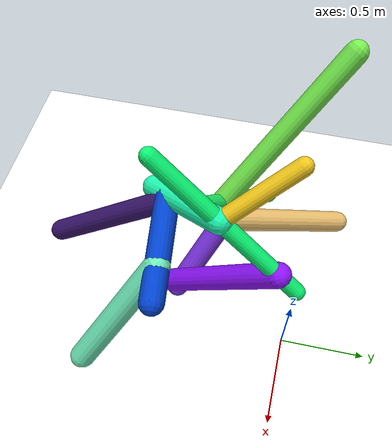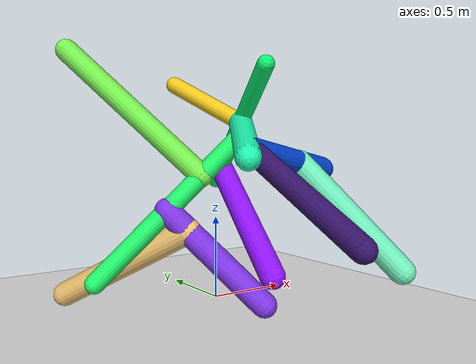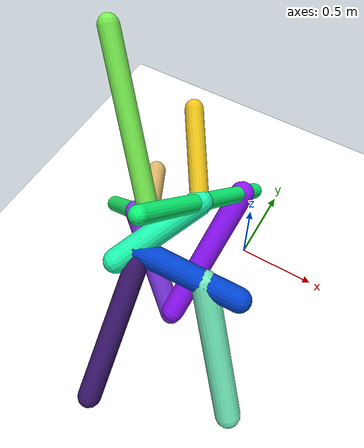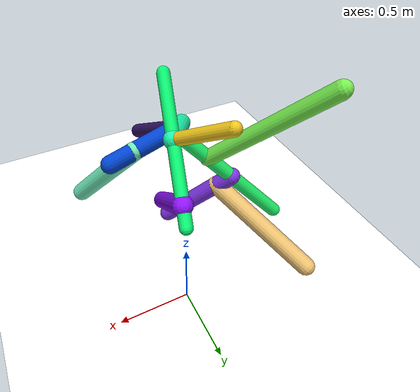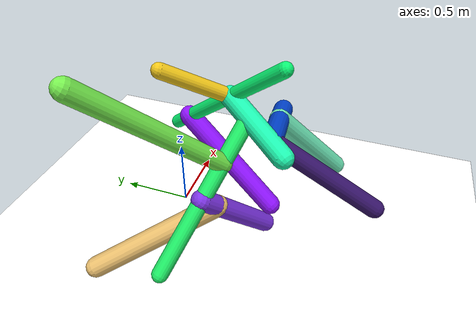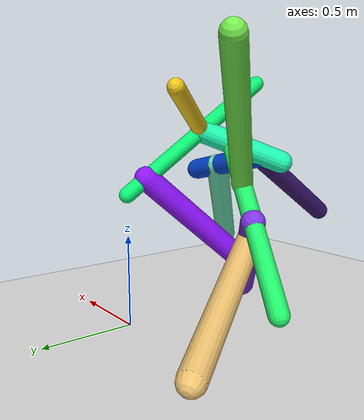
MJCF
<mujoco model="morphology">
  <option timestep="0.01"/>
  <default>
    <default class="/"/>
    <default class="0/"/>
    <default class="0/1/"/>
    <default class="0/2/"/>
    <default class="0/2/3/"/>
    <default class="0/2/3/4/"/>
    <default class="0/2/3/5/"/>
    <default class="0/2/6/"/>
    <default class="0/2/6/7/"/>
    <default class="0/2/6/7/8/"/>
    <default class="0/2/6/9/"/>
    <default class="0/2/10/"/>
  </default>
  <asset>
    <texture name="texplane" type="2d" builtin="checker" rgb1="0.10000000000000001 0.20000000000000001 0.29999999999999999" rgb2="0.20000000000000001 0.29999999999999999 0.40000000000000002" width="300" height="300"/>
    <material name="MatPlane" class="/" texture="texplane" texrepeat="20 20" specular="1" shininess="1" reflectance="0.5"/>
  </asset>
  <worldbody>
    <light name="//unnamed_light_0" class="/" directional="true" pos="0 0 1.5" dir="0 0 -1.3" cutoff="100" exponent="1" diffuse="1 1 1" specular="0.10000000000000001 0.10000000000000001 0.10000000000000001"/>
    <geom name="ground" class="/" type="plane" size="15 15 0.5" material="MatPlane" rgba="1 1 1 1"/>
    <site name="body" class="/" size="9.9999999999999995e-07 9.9999999999999995e-07 9.9999999999999995e-07" pos="0 0 0.72592643499374387"/>
    <body pos="0 0 0.72592643499374387" name="0/">
      <freejoint name="0/"/>
      <geom name="0/geom" class="0/" type="capsule" contype="1" conaffinity="1" condim="3" size="0.044187440050253636" rgba="0.03211432888996324 0.94908601437343376 0.44389806537214949 1" friction="0.59999999999999998 0.10000000000000001 0.10000000000000001" fromto="0 0 0 -0.20523387319444097 -0.74098858627737196 0.60300608991635229"/>
      <site name="0/end0" class="0/" size="0.0050000000000000001" pos="-0.20523387319444097 -0.74098858627737196 0.60300608991635229"/>
      <site name="0/attach1" class="0/" size="9.9999999999999995e-07 9.9999999999999995e-07 9.9999999999999995e-07" pos="-0.028844798425918822 -0.10414297637324074 0.084750089458964575"/>
      <body pos="-0.028844798425918822 -0.10414297637324074 0.084750089458964575" name="0/1/">
        <joint name="0/1/joint/" class="0/" type="hinge" axis="0 0 1" limited="true" range="-43.894692438198412 43.894692438198412"/>
        <geom name="0/1/geom" class="0/1/" type="capsule" contype="1" conaffinity="1" condim="3" size="0.066710028325027079" rgba="0.56148290486456609 0.073673029085813857 0.99635684130478253 1" friction="0.59999999999999998 0.10000000000000001 0.10000000000000001" fromto="0 0 0 -0.10126468737991179 -0.6048439095223952 -0.52505756630246336"/>
        <site name="0/1/end1" class="0/1/" size="0.0050000000000000001" pos="-0.10126468737991179 -0.6048439095223952 -0.52505756630246336"/>
      </body>
      <site name="0/attach2" class="0/" size="9.9999999999999995e-07 9.9999999999999995e-07 9.9999999999999995e-07" pos="-0.11480123835543156 -0.41448522111790942 0.3373022434395056"/>
      <body pos="-0.11480123835543156 -0.41448522111790942 0.3373022434395056" name="0/2/">
        <joint name="0/2/joint/" class="0/" type="hinge" axis="0 1 0" limited="true" range="-68.054081711341155 68.054081711341155"/>
        <geom name="0/2/geom" class="0/2/" type="capsule" contype="1" conaffinity="1" condim="3" size="0.063981274138557698" rgba="0.10784780786944781 0.95804229640257677 0.67845729310903158 1" friction="0.59999999999999998 0.10000000000000001 0.10000000000000001" fromto="0 0 0 -0.24056055250007358 -0.39015623230710972 -0.17724541101981672"/>
        <site name="0/2/end2" class="0/2/" size="0.0050000000000000001" pos="-0.24056055250007358 -0.39015623230710972 -0.17724541101981672"/>
        <site name="0/2/attach3" class="0/2/" size="9.9999999999999995e-07 9.9999999999999995e-07 9.9999999999999995e-07" pos="-0.18794887405231475 -0.30482730358125609 -0.13848103974613254"/>
        <body pos="-0.18794887405231475 -0.30482730358125609 -0.13848103974613254" name="0/2/3/">
          <joint name="0/2/3/joint/" class="0/2/" type="hinge" axis="0.8719990740411222 -0.4456735429326949 -0.20246656020500009" limited="true" range="-47.383761907459203 47.383761907459203"/>
          <geom name="0/2/3/geom" class="0/2/3/" type="capsule" contype="1" conaffinity="1" condim="3" size="0.063517460506841233" rgba="0.0008782826910733732 0.26014601954804784 0.80185635287348922 1" friction="0.59999999999999998 0.10000000000000001 0.10000000000000001" fromto="0 0 0 0.54570887489807718 0.056385212060010903 -0.11035906413439056"/>
          <site name="0/2/3/end3" class="0/2/3/" size="0.0050000000000000001" pos="0.54570887489807718 0.056385212060010903 -0.11035906413439056"/>
          <site name="0/2/3/attach4" class="0/2/3/" size="9.9999999999999995e-07 9.9999999999999995e-07 9.9999999999999995e-07" pos="0.036135888394242831 0.0037337302430106548 -0.0073077844401893844"/>
          <body pos="0.036135888394242831 0.0037337302430106548 -0.0073077844401893844" name="0/2/3/4/">
            <joint name="0/2/3/4/joint/" class="0/2/3/" type="hinge" axis="-0.22145853526463344 0.44368245429767306 -0.86839046339007886" limited="true" range="-43.282125820680143 43.282125820680143"/>
            <geom name="0/2/3/4/geom" class="0/2/3/4/" type="capsule" contype="1" conaffinity="1" condim="3" size="0.057610956234041909" rgba="0.20721140320336706 0.076501972858380451 0.40506201707099365 1" friction="0.59999999999999998 0.10000000000000001 0.10000000000000001" fromto="0 0 0 0.070398152849262319 -0.63744401746077428 -0.38954664749437712"/>
            <site name="0/2/3/4/end4" class="0/2/3/4/" size="0.0050000000000000001" pos="0.070398152849262319 -0.63744401746077428 -0.38954664749437712"/>
          </body>
          <site name="0/2/3/attach5" class="0/2/3/" size="9.9999999999999995e-07 9.9999999999999995e-07 9.9999999999999995e-07" pos="0.36662531348116234 0.037881454742813736 -0.074142877905944801"/>
          <body pos="0.36662531348116234 0.037881454742813736 -0.074142877905944801" name="0/2/3/5/">
            <joint name="0/2/3/5/joint/" class="0/2/3/" type="hinge" axis="0 0.89050181136247752 0.45497969620648582" limited="true" range="-64.336405997008939 64.336405997008939"/>
            <geom name="0/2/3/5/geom" class="0/2/3/5/" type="capsule" contype="1" conaffinity="1" condim="3" size="0.067377060161584679" rgba="0.42986063187998536 0.90785707197989329 0.71722929387307099 1" friction="0.59999999999999998 0.10000000000000001 0.10000000000000001" fromto="0 0 0 0.35893467853423422 -0.38030868235390408 -0.54465095335231839"/>
            <site name="0/2/3/5/end5" class="0/2/3/5/" size="0.0050000000000000001" pos="0.35893467853423422 -0.38030868235390408 -0.54465095335231839"/>
          </body>
        </body>
        <site name="0/2/attach6" class="0/2/" size="9.9999999999999995e-07 9.9999999999999995e-07 9.9999999999999995e-07" pos="-0.086673082078704611 -0.14057185517256376 -0.06386086953050879"/>
        <body pos="-0.086673082078704611 -0.14057185517256376 -0.06386086953050879" name="0/2/6/">
          <joint name="0/2/6/joint/" class="0/2/" type="hinge" axis="2.7755575615628914e-17 -0.41361276543734049 0.91045289843422206" limited="true" range="-41.459693608842947 41.459693608842947"/>
          <geom name="0/2/6/geom" class="0/2/6/" type="capsule" contype="1" conaffinity="1" condim="3" size="0.051212126976213482" rgba="0.12275993969441734 0.94635736746014987 0.40835953659889812 1" friction="0.59999999999999998 0.10000000000000001 0.10000000000000001" fromto="0 0 0 -0.67965103231160529 0.30794581178531821 -0.74109095308153561"/>
          <site name="0/2/6/end6" class="0/2/6/" size="0.0050000000000000001" pos="-0.67965103231160529 0.30794581178531821 -0.74109095308153561"/>
          <site name="0/2/6/attach7" class="0/2/6/" size="9.9999999999999995e-07 9.9999999999999995e-07 9.9999999999999995e-07" pos="-0.35330408484745585 0.16007996463328694 -0.38524249728080623"/>
          <body pos="-0.35330408484745585 0.16007996463328694 -0.38524249728080623" name="0/2/6/7/">
            <geom name="0/2/6/7/geom" class="0/2/6/7/" type="capsule" contype="1" conaffinity="1" condim="3" size="0.0651390141300449" rgba="0.49378157214980278 0.20862462505143553 0.89970312043617873 1" friction="0.59999999999999998 0.10000000000000001 0.10000000000000001" fromto="0 0 0 0.3888671344047836 -0.29437326739560959 -0.47382462350520793"/>
            <site name="0/2/6/7/end7" class="0/2/6/7/" size="0.0050000000000000001" pos="0.3888671344047836 -0.29437326739560959 -0.47382462350520793"/>
            <site name="0/2/6/7/attach8" class="0/2/6/7/" size="9.9999999999999995e-07 9.9999999999999995e-07 9.9999999999999995e-07" pos="0.082531304028844274 -0.062476376839041156 -0.10056227590104086"/>
            <body pos="0.082531304028844274 -0.062476376839041156 -0.10056227590104086" name="0/2/6/7/8/">
              <joint name="0/2/6/7/8/joint/" class="0/2/6/7/" type="hinge" axis="-5.5511151231257827e-17 -0.84941901780249907 0.52771898979991005" limited="true" range="-49.055329408065404 49.055329408065404"/>
              <geom name="0/2/6/7/8/geom" class="0/2/6/7/8/" type="capsule" contype="1" conaffinity="1" condim="3" size="0.068057657311593439" rgba="0.9229265638811649 0.75152947305245665 0.43549937556124785 1" friction="0.59999999999999998 0.10000000000000001 0.10000000000000001" fromto="0 0 0 -0.39615769772264064 0.6878580756324375 -0.41356306339604315"/>
              <site name="0/2/6/7/8/end8" class="0/2/6/7/8/" size="0.0050000000000000001" pos="-0.39615769772264064 0.6878580756324375 -0.41356306339604315"/>
            </body>
          </body>
          <site name="0/2/6/attach9" class="0/2/6/" size="9.9999999999999995e-07 9.9999999999999995e-07 9.9999999999999995e-07" pos="-0.19408617232183967 0.087939282147005887 -0.21163141022052306"/>
          <body pos="-0.19408617232183967 0.087939282147005887 -0.21163141022052306" name="0/2/6/9/">
            <joint name="0/2/6/9/joint/" class="0/2/6/" type="hinge" axis="-0.76310892062184799 -0.24798741417206877 0.59679730032868716" limited="true" range="-35.836566354862491 35.836566354862491"/>
            <geom name="0/2/6/9/geom" class="0/2/6/9/" type="capsule" contype="1" conaffinity="1" condim="3" size="0.057929563406707782" rgba="0.45495017817598249 0.91814577064451774 0.29947559039813976 1" friction="0.59999999999999998 0.10000000000000001 0.10000000000000001" fromto="0 0 0 -0.50383618158252741 0.51968103538898403 0.64842957270543211"/>
            <site name="0/2/6/9/end9" class="0/2/6/9/" size="0.0050000000000000001" pos="-0.50383618158252741 0.51968103538898403 0.64842957270543211"/>
          </body>
        </body>
        <site name="0/2/attach10" class="0/2/" size="9.9999999999999995e-07 9.9999999999999995e-07 9.9999999999999995e-07" pos="-0.00017745897133959358 -0.00028781411967753948 -0.00013075206216210582"/>
        <body pos="-0.00017745897133959358 -0.00028781411967753948 -0.00013075206216210582" name="0/2/10/">
          <joint name="0/2/10/joint/" class="0/2/" type="hinge" axis="0.8719990740411222 -0.4456735429326949 -0.20246656020500009" limited="true" range="-46.677841660686227 46.677841660686227"/>
          <geom name="0/2/10/geom" class="0/2/10/" type="capsule" contype="1" conaffinity="1" condim="3" size="0.04563923936805387" rgba="0.92717285073745348 0.76417547424849364 0.099263760951624813 1" friction="0.59999999999999998 0.10000000000000001 0.10000000000000001" fromto="0 0 0 -0.21885684341726075 0.32816949811381191 0.2121735359963518"/>
          <site name="0/2/10/end10" class="0/2/10/" size="0.0050000000000000001" pos="-0.21885684341726075 0.32816949811381191 0.2121735359963518"/>
        </body>
      </body>
      <camera name="0/iso" class="0/" mode="trackcom" pos="-2.2999999999999998 -2.2999999999999998 1" xyaxes="0.45000000000000001 -0.45000000000000001 0 0.29999999999999999 0.14999999999999999 0.93999999999999995"/>
    </body>
  </worldbody>
  <actuator>
    <motor name="0/1/motor" class="0/1/" ctrllimited="true" ctrlrange="-1 1" gear="95" joint="0/1/joint/"/>
    <motor name="0/2/motor" class="0/2/" ctrllimited="true" ctrlrange="-1 1" gear="82" joint="0/2/joint/"/>
    <motor name="0/2/3/motor" class="0/2/3/" ctrllimited="true" ctrlrange="-1 1" gear="58" joint="0/2/3/joint/"/>
    <motor name="0/2/3/4/motor" class="0/2/3/4/" ctrllimited="true" ctrlrange="-1 1" gear="64" joint="0/2/3/4/joint/"/>
    <motor name="0/2/3/5/motor" class="0/2/3/5/" ctrllimited="true" ctrlrange="-1 1" gear="90" joint="0/2/3/5/joint/"/>
    <motor name="0/2/6/motor" class="0/2/6/" ctrllimited="true" ctrlrange="-1 1" gear="82" joint="0/2/6/joint/"/>
    <motor name="0/2/6/7/8/motor" class="0/2/6/7/8/" ctrllimited="true" ctrlrange="-1 1" gear="85" joint="0/2/6/7/8/joint/"/>
    <motor name="0/2/6/9/motor" class="0/2/6/9/" ctrllimited="true" ctrlrange="-1 1" gear="91" joint="0/2/6/9/joint/"/>
    <motor name="0/2/10/motor" class="0/2/10/" ctrllimited="true" ctrlrange="-1 1" gear="93" joint="0/2/10/joint/"/>
  </actuator>
  <sensor>
    <subtreelinvel name="velocity" body="0/"/>
  </sensor>
</mujoco>
